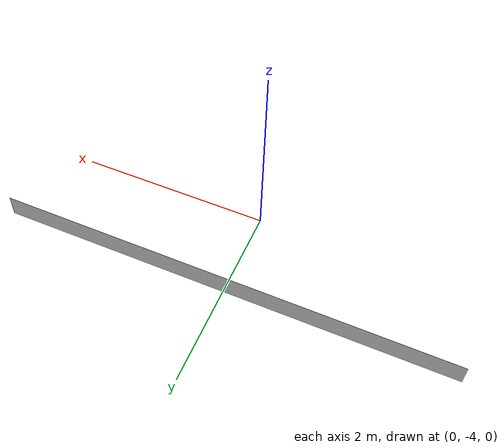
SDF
<?xml version='1.0'?>
<sdf version='1.10'>
  <model name='wood_wall_short'>
      <link name='link'>
        <visual name='visual'>
          <geometry>
            <mesh>
              <uri>model:///wall_4_8x0_25/meshes/wood_wall_short.obj</uri>
            </mesh>
          </geometry>
        </visual>
        <collision name='collision'>
          <geometry>
            <mesh>
              <uri>model:///wall_4_8x0_25/meshes/wood_wall_short.obj</uri>
            </mesh>
          </geometry>
        </collision>
        <pose>0 0 0 0 0 0</pose>
        <inertial>
          <pose>0 0 0 0 0 0</pose>
          <mass>1</mass>
          <inertia>
            <ixx>1</ixx>
            <ixy>0</ixy>
            <ixz>0</ixz>
            <iyy>1</iyy>
            <iyz>0</iyz>
            <izz>1</izz>
          </inertia>
        </inertial>
        <enable_wind>false</enable_wind>
      </link>
      <pose>0 -3.0500000000000007 0.125 -2.3322398238967462e-19 1.3561859730864948e-19 0.00080000008533333701</pose>
      <static>true</static>
      <self_collide>false</self_collide>
    </model>
</sdf>
